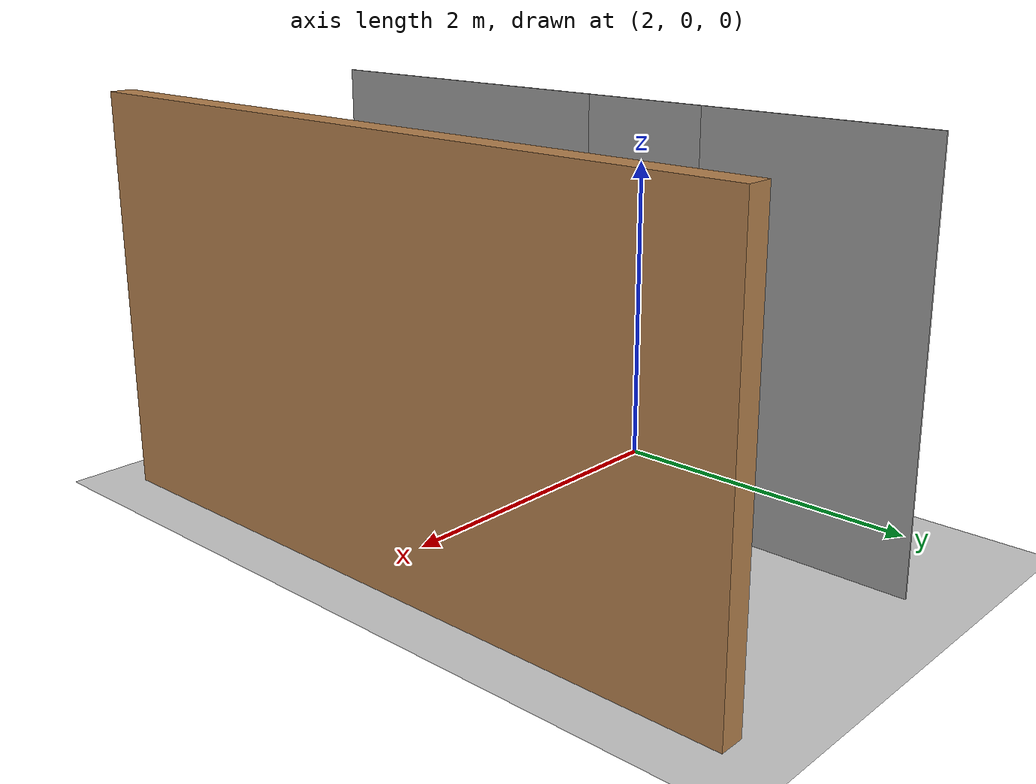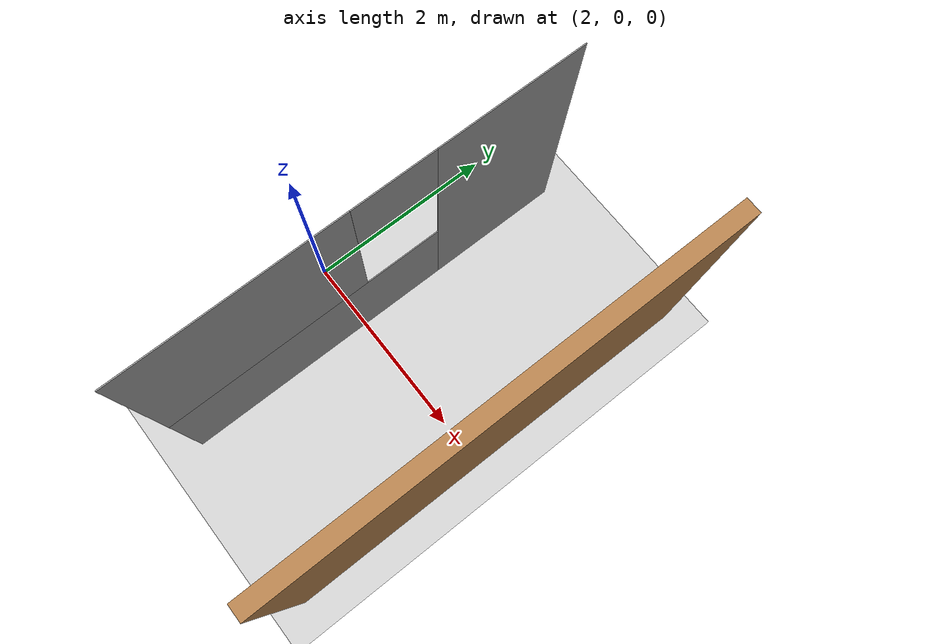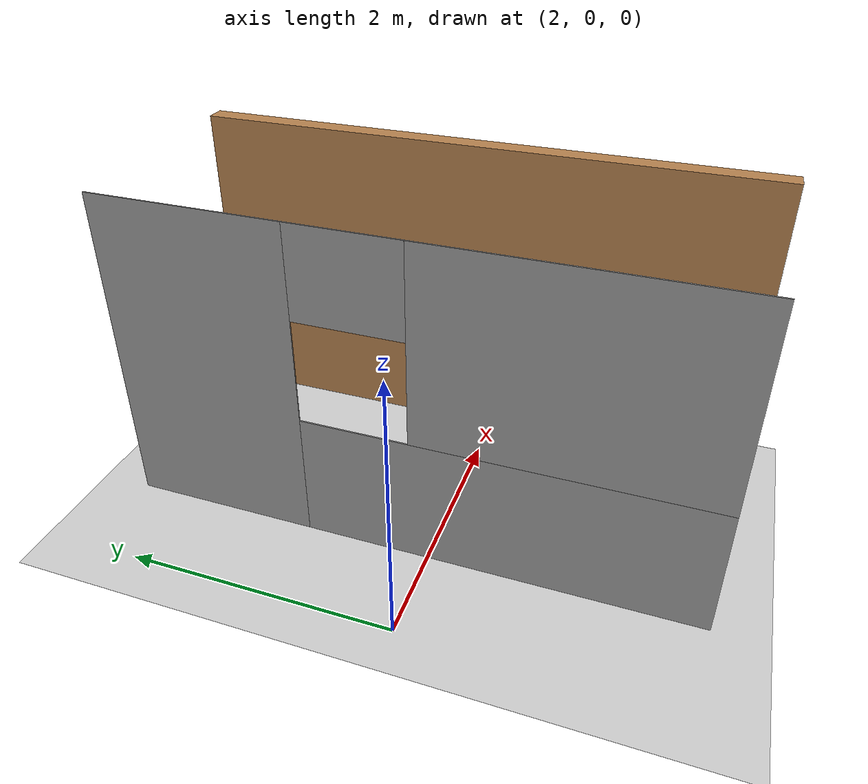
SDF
<sdf version="1.7">
 <world name="default">
  <light name="sun" type="directional">
   <pose>0 0 10 0 -0 0</pose>
   <diffuse>0.8 0.8 0.8 1</diffuse>
   <specular>0.2 0.2 0.2 1</specular>
   <attenuation>
    <range>1000</range>
    <constant>0.9</constant>
    <linear>0.01</linear>
    <quadratic>0.001</quadratic>
   </attenuation>
   <direction>-0.5 0.1 -0.9</direction>
   <spot><inner_angle>0</inner_angle><outer_angle>0</outer_angle><falloff>0</falloff></spot>
  </light>
  <model name="ground_plane">
   <static>1</static>
   <link name="link">
    <collision name="collision">
     <geometry><plane><normal>0 0 1</normal><size>100 100</size></plane></geometry>
     <surface>
      <contact><collide_bitmask>65535</collide_bitmask></contact>
      <friction><ode><mu>100</mu><mu2>50</mu2></ode></friction>
     </surface>
    </collision>
    <visual name="visual">
     <cast_shadows>0</cast_shadows>
     <geometry><plane><normal>0 0 1</normal><size>100 100</size></plane></geometry>
     <material>
      <script><uri>file://media/materials/scripts/gazebo.material</uri><name>Gazebo/Grey</name></script>
     </material>
    </visual>
   </link>
  </model>
  <gravity>0 0 -9.8</gravity>
  <magnetic_field>6e-06 2.3e-05 -4.2e-05</magnetic_field>
  <atmosphere type="adiabatic"/>
  <physics type="ode">
   <max_step_size>0.001</max_step_size>
   <real_time_factor>1</real_time_factor>
   <real_time_update_rate>1000</real_time_update_rate>
  </physics>
  <scene><ambient>0.4 0.4 0.4 1</ambient><background>0.7 0.7 0.7 1</background><shadows>1</shadows></scene>
  <spherical_coordinates>
   <surface_model>EARTH_WGS84</surface_model>
   <latitude_deg>0</latitude_deg>
   <longitude_deg>0</longitude_deg>
   <elevation>0</elevation>
   <heading_deg>0</heading_deg>
  </spherical_coordinates>
  <model name="Untitled3">
   <pose>2.2625 0.195 0 0 -0 0</pose>
   <link name="Wall_2">
    <pose>0.4375 0 0 0 -0 -1.5708</pose>
    <visual name="Wall_2_Visual_0">
     <pose>-1.4625 0 1.25 0 -0 0</pose>
     <geometry><box><size>1.435 0.01 2.5</size></box></geometry>
     <material>
      <script><uri>file://media/materials/scripts/gazebo.material</uri><name>Gazebo/Grey</name></script>
      <ambient>1 1 1 1</ambient>
     </material>
     <meta><layer>0</layer></meta>
    </visual>
    <collision name="Wall_2_Collision_0">
     <geometry><box><size>1.435 0.01 2.5</size></box></geometry>
     <pose>-1.4625 0 1.25 0 -0 0</pose>
    </collision>
    <visual name="Wall_2_Visual_1">
     <pose>0.7175 0 0.5 0 -0 0</pose>
     <geometry><box><size>2.925 0.01 1</size></box></geometry>
     <material>
      <script><uri>file://media/materials/scripts/gazebo.material</uri><name>Gazebo/Grey</name></script>
      <ambient>1 1 1 1</ambient>
     </material>
     <meta><layer>0</layer></meta>
    </visual>
    <collision name="Wall_2_Collision_1">
     <geometry><box><size>2.925 0.01 1</size></box></geometry>
     <pose>0.7175 0 0.5 0 -0 0</pose>
    </collision>
    <visual name="Wall_2_Visual_2">
     <pose>1.1175 0 1.75 0 -0 0</pose>
     <geometry><box><size>2.125 0.01 1.5</size></box></geometry>
     <material>
      <script><uri>file://media/materials/scripts/gazebo.material</uri><name>Gazebo/Grey</name></script>
      <ambient>1 1 1 1</ambient>
     </material>
     <meta><layer>0</layer></meta>
    </visual>
    <collision name="Wall_2_Collision_2">
     <geometry><box><size>2.125 0.01 1.5</size></box></geometry>
     <pose>1.1175 0 1.75 0 -0 0</pose>
    </collision>
    <visual name="Wall_2_Visual_3">
     <pose>-0.345 0 2.15 0 -0 0</pose>
     <geometry><box><size>0.8 0.01 0.7</size></box></geometry>
     <material>
      <script><uri>file://media/materials/scripts/gazebo.material</uri><name>Gazebo/Grey</name></script>
      <ambient>1 1 1 1</ambient>
     </material>
     <meta><layer>0</layer></meta>
    </visual>
    <collision name="Wall_2_Collision_3">
     <geometry><box><size>0.8 0.01 0.7</size></box></geometry>
     <pose>-0.345 0 2.15 0 -0 0</pose>
    </collision>
   </link>
   <link name="Wall_4">
    <collision name="Wall_4_Collision">
     <geometry><box><size>4.5 0.15 2.5</size></box></geometry>
     <pose>0 0 1.25 0 -0 0</pose>
    </collision>
    <visual name="Wall_4_Visual">
     <pose>0 0 1.25 0 -0 0</pose>
     <geometry><box><size>4.5 0.15 2.5</size></box></geometry>
     <material>
      <script><uri>file://media/materials/scripts/gazebo.material</uri><name>Gazebo/Wood</name></script>
      <ambient>0.996078 0.47451 0.0196078 1</ambient>
     </material>
     <meta><layer>0</layer></meta>
    </visual>
    <pose>2.1875 0 0 0 -0 1.5708</pose>
   </link>
   <static>1</static>
  </model>
 </world>
</sdf>
